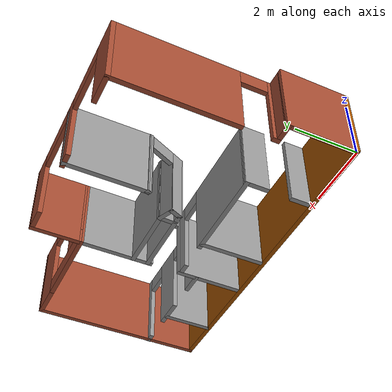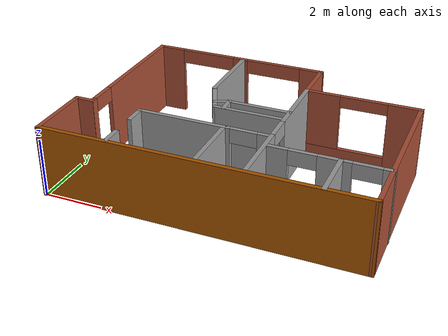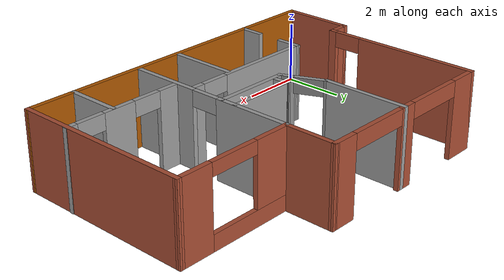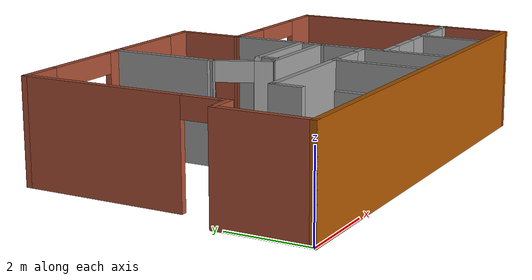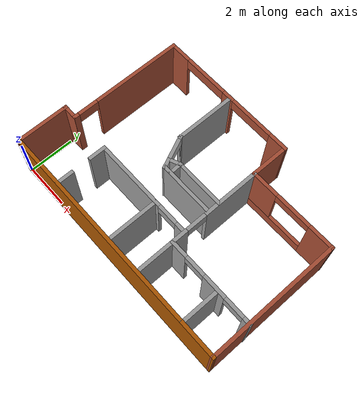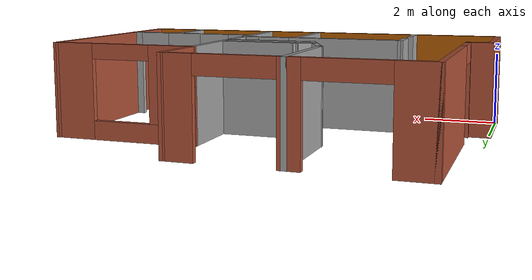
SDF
<?xml version='1.0'?>
<sdf version='1.6'>
  <model name='Apartment1'>
    <pose frame=''>5.35756 3.62505 0 0 -0 0</pose>
    <link name='Wall_26'>
      <collision name='Wall_26_Collision'>
        <geometry>
          <box>
            <size>10.85 0.15 2.5</size>
          </box>
        </geometry>
        <pose frame=''>0 0 1.25 0 -0 0</pose>
      </collision>
      <visual name='Wall_26_Visual'>
        <pose frame=''>0 0 1.25 0 -0 0</pose>
        <geometry>
          <box>
            <size>10.85 0.15 2.5</size>
          </box>
        </geometry>
        <material>
          <script>
            <uri>file://media/materials/scripts/gazebo.material</uri>
            <name>Gazebo/Grey</name>
          </script>
          <ambient>0.666667 0.333333 0 1</ambient>
        </material>
        <meta>
          <layer>0</layer>
        </meta>
      </visual>
      <pose frame=''>-0.007561 -3.62505 0 0 -0 0</pose>
    </link>
    <link name='Wall_29'>
      <collision name='Wall_29_Collision'>
        <geometry>
          <box>
            <size>5.823 0.15 2.5</size>
          </box>
        </geometry>
        <pose frame=''>0 0 1.25 0 -0 0</pose>
      </collision>
      <visual name='Wall_29_Visual'>
        <pose frame=''>0 0 1.25 0 -0 0</pose>
        <geometry>
          <box>
            <size>5.823 0.15 2.5</size>
          </box>
        </geometry>
        <material>
          <script>
            <uri>file://media/materials/scripts/gazebo.material</uri>
            <name>Gazebo/Bricks</name>
          </script>
          <ambient>1 1 1 1</ambient>
        </material>
        <meta>
          <layer>0</layer>
        </meta>
      </visual>
      <pose frame=''>5.33994 -0.788547 0 0 -0 1.57168</pose>
    </link>
    <link name='Wall_30'>
      <pose frame=''>3.41244 2.04145 0 0 0 -3.13822</pose>
      <visual name='Wall_30_Visual_0'>
        <pose frame=''>-1.42512 0 1.25 0 -0 0</pose>
        <geometry>
          <box>
            <size>1.14975 0.15 2.5</size>
          </box>
        </geometry>
        <material>
          <script>
            <uri>file://media/materials/scripts/gazebo.material</uri>
            <name>Gazebo/Bricks</name>
          </script>
          <ambient>1 1 1 1</ambient>
        </material>
        <meta>
          <layer>0</layer>
        </meta>
      </visual>
      <collision name='Wall_30_Collision_0'>
        <geometry>
          <box>
            <size>1.14975 0.15 2.5</size>
          </box>
        </geometry>
        <pose frame=''>-1.42512 0 1.25 0 -0 0</pose>
      </collision>
      <visual name='Wall_30_Visual_1'>
        <pose frame=''>0.574876 0 0.25 0 -0 0</pose>
        <geometry>
          <box>
            <size>2.85025 0.15 0.5</size>
          </box>
        </geometry>
        <material>
          <script>
            <uri>file://media/materials/scripts/gazebo.material</uri>
            <name>Gazebo/Bricks</name>
          </script>
          <ambient>1 1 1 1</ambient>
        </material>
        <meta>
          <layer>0</layer>
        </meta>
      </visual>
      <collision name='Wall_30_Collision_1'>
        <geometry>
          <box>
            <size>2.85025 0.15 0.5</size>
          </box>
        </geometry>
        <pose frame=''>0.574876 0 0.25 0 -0 0</pose>
      </collision>
      <visual name='Wall_30_Visual_2'>
        <pose frame=''>1.37488 0 1.5 0 -0 0</pose>
        <geometry>
          <box>
            <size>1.25025 0.15 2</size>
          </box>
        </geometry>
        <material>
          <script>
            <uri>file://media/materials/scripts/gazebo.material</uri>
            <name>Gazebo/Bricks</name>
          </script>
          <ambient>1 1 1 1</ambient>
        </material>
        <meta>
          <layer>0</layer>
        </meta>
      </visual>
      <collision name='Wall_30_Collision_2'>
        <geometry>
          <box>
            <size>1.25025 0.15 2</size>
          </box>
        </geometry>
        <pose frame=''>1.37488 0 1.5 0 -0 0</pose>
      </collision>
      <visual name='Wall_30_Visual_3'>
        <pose frame=''>-0.050248 0 2.3 0 -0 0</pose>
        <geometry>
          <box>
            <size>1.6 0.15 0.4</size>
          </box>
        </geometry>
        <material>
          <script>
            <uri>file://media/materials/scripts/gazebo.material</uri>
            <name>Gazebo/Bricks</name>
          </script>
          <ambient>1 1 1 1</ambient>
        </material>
        <meta>
          <layer>0</layer>
        </meta>
      </visual>
      <collision name='Wall_30_Collision_3'>
        <geometry>
          <box>
            <size>1.6 0.15 0.4</size>
          </box>
        </geometry>
        <pose frame=''>-0.050248 0 2.3 0 -0 0</pose>
      </collision>
    </link>
    <link name='Wall_32'>
      <pose frame=''>1.48994 -0.720047 0 0 0 -1.56989</pose>
      <visual name='Wall_32_Visual_0'>
        <pose frame=''>-1.57019 0 1.25 0 -0 0</pose>
        <geometry>
          <box>
            <size>2.51977 0.15 2.5</size>
          </box>
        </geometry>
        <material>
          <script>
            <uri>file://media/materials/scripts/gazebo.material</uri>
            <name>Gazebo/Grey</name>
          </script>
          <ambient>1 1 1 1</ambient>
        </material>
        <meta>
          <layer>0</layer>
        </meta>
      </visual>
      <collision name='Wall_32_Collision_0'>
        <geometry>
          <box>
            <size>2.51977 0.15 2.5</size>
          </box>
        </geometry>
        <pose frame=''>-1.57019 0 1.25 0 -0 0</pose>
      </collision>
      <visual name='Wall_32_Visual_1'>
        <pose frame=''>1.70989 0 1.25 0 -0 0</pose>
        <geometry>
          <box>
            <size>2.24038 0.15 2.5</size>
          </box>
        </geometry>
        <material>
          <script>
            <uri>file://media/materials/scripts/gazebo.material</uri>
            <name>Gazebo/Grey</name>
          </script>
          <ambient>1 1 1 1</ambient>
        </material>
        <meta>
          <layer>0</layer>
        </meta>
      </visual>
      <collision name='Wall_32_Collision_1'>
        <geometry>
          <box>
            <size>2.24038 0.15 2.5</size>
          </box>
        </geometry>
        <pose frame=''>1.70989 0 1.25 0 -0 0</pose>
      </collision>
      <visual name='Wall_32_Visual_2'>
        <pose frame=''>0.139696 0 2.25 0 -0 0</pose>
        <geometry>
          <box>
            <size>0.9 0.15 0.5</size>
          </box>
        </geometry>
        <material>
          <script>
            <uri>file://media/materials/scripts/gazebo.material</uri>
            <name>Gazebo/Grey</name>
          </script>
          <ambient>1 1 1 1</ambient>
        </material>
        <meta>
          <layer>0</layer>
        </meta>
      </visual>
      <collision name='Wall_32_Collision_2'>
        <geometry>
          <box>
            <size>0.9 0.15 0.5</size>
          </box>
        </geometry>
        <pose frame=''>0.139696 0 2.25 0 -0 0</pose>
      </collision>
    </link>
    <link name='Wall_34'>
      <pose frame=''>3.43256 -1.98283 0 0 -0 0</pose>
      <visual name='Wall_34_Visual_0'>
        <pose frame=''>-1.60757 0 1.25 0 -0 0</pose>
        <geometry>
          <box>
            <size>0.784866 0.15 2.5</size>
          </box>
        </geometry>
        <material>
          <script>
            <uri>file://media/materials/scripts/gazebo.material</uri>
            <name>Gazebo/Grey</name>
          </script>
          <ambient>1 1 1 1</ambient>
        </material>
        <meta>
          <layer>0</layer>
        </meta>
      </visual>
      <collision name='Wall_34_Collision_0'>
        <geometry>
          <box>
            <size>0.784866 0.15 2.5</size>
          </box>
        </geometry>
        <pose frame=''>-1.60757 0 1.25 0 -0 0</pose>
      </collision>
      <visual name='Wall_34_Visual_1'>
        <pose frame=''>0.208226 0 1.25 0 -0 0</pose>
        <geometry>
          <box>
            <size>1.04672 0.15 2.5</size>
          </box>
        </geometry>
        <material>
          <script>
            <uri>file://media/materials/scripts/gazebo.material</uri>
            <name>Gazebo/Grey</name>
          </script>
          <ambient>1 1 1 1</ambient>
        </material>
        <meta>
          <layer>0</layer>
        </meta>
      </visual>
      <collision name='Wall_34_Collision_1'>
        <geometry>
          <box>
            <size>1.04672 0.15 2.5</size>
          </box>
        </geometry>
        <pose frame=''>0.208226 0 1.25 0 -0 0</pose>
      </collision>
      <visual name='Wall_34_Visual_2'>
        <pose frame=''>1.81579 0 1.25 0 -0 0</pose>
        <geometry>
          <box>
            <size>0.368414 0.15 2.5</size>
          </box>
        </geometry>
        <material>
          <script>
            <uri>file://media/materials/scripts/gazebo.material</uri>
            <name>Gazebo/Grey</name>
          </script>
          <ambient>1 1 1 1</ambient>
        </material>
        <meta>
          <layer>0</layer>
        </meta>
      </visual>
      <collision name='Wall_34_Collision_2'>
        <geometry>
          <box>
            <size>0.368414 0.15 2.5</size>
          </box>
        </geometry>
        <pose frame=''>1.81579 0 1.25 0 -0 0</pose>
      </collision>
      <visual name='Wall_34_Visual_3'>
        <pose frame=''>-0.765134 0 2.25 0 -0 0</pose>
        <geometry>
          <box>
            <size>0.9 0.15 0.5</size>
          </box>
        </geometry>
        <material>
          <script>
            <uri>file://media/materials/scripts/gazebo.material</uri>
            <name>Gazebo/Grey</name>
          </script>
          <ambient>1 1 1 1</ambient>
        </material>
        <meta>
          <layer>0</layer>
        </meta>
      </visual>
      <collision name='Wall_34_Collision_3'>
        <geometry>
          <box>
            <size>0.9 0.15 0.5</size>
          </box>
        </geometry>
        <pose frame=''>-0.765134 0 2.25 0 -0 0</pose>
      </collision>
      <visual name='Wall_34_Visual_4'>
        <pose frame=''>1.18159 0 2.25 0 -0 0</pose>
        <geometry>
          <box>
            <size>0.9 0.15 0.5</size>
          </box>
        </geometry>
        <material>
          <script>
            <uri>file://media/materials/scripts/gazebo.material</uri>
            <name>Gazebo/Grey</name>
          </script>
          <ambient>1 1 1 1</ambient>
        </material>
        <meta>
          <layer>0</layer>
        </meta>
      </visual>
      <collision name='Wall_34_Collision_4'>
        <geometry>
          <box>
            <size>0.9 0.15 0.5</size>
          </box>
        </geometry>
        <pose frame=''>1.18159 0 2.25 0 -0 0</pose>
      </collision>
    </link>
    <link name='Wall_36'>
      <collision name='Wall_36_Collision'>
        <geometry>
          <box>
            <size>2.35 0.15 2.5</size>
          </box>
        </geometry>
        <pose frame=''>0 0 1.25 0 -0 0</pose>
      </collision>
      <visual name='Wall_36_Visual'>
        <pose frame=''>0 0 1.25 0 -0 0</pose>
        <geometry>
          <box>
            <size>2.35 0.15 2.5</size>
          </box>
        </geometry>
        <material>
          <script>
            <uri>file://media/materials/scripts/gazebo.material</uri>
            <name>Gazebo/Bricks</name>
          </script>
          <ambient>1 1 1 1</ambient>
        </material>
        <meta>
          <layer>0</layer>
        </meta>
      </visual>
      <pose frame=''>-5.35756 -2.52505 0 0 -0 1.5708</pose>
    </link>
    <link name='Wall_38'>
      <collision name='Wall_38_Collision'>
        <geometry>
          <box>
            <size>0.8 0.15 2.5</size>
          </box>
        </geometry>
        <pose frame=''>0 0 1.25 0 -0 0</pose>
      </collision>
      <visual name='Wall_38_Visual'>
        <pose frame=''>0 0 1.25 0 -0 0</pose>
        <geometry>
          <box>
            <size>0.8 0.15 2.5</size>
          </box>
        </geometry>
        <material>
          <script>
            <uri>file://media/materials/scripts/gazebo.material</uri>
            <name>Gazebo/Grey</name>
          </script>
          <ambient>1 1 1 1</ambient>
        </material>
        <meta>
          <layer>0</layer>
        </meta>
      </visual>
      <pose frame=''>-2.9976 -1.75005 0 0 0 -1.57073</pose>
    </link>
    <link name='Wall_40'>
      <pose frame=''>-0.822618 -1.42505 0 0 -0 0</pose>
      <visual name='Wall_40_Visual_0'>
        <pose frame=''>-0.642213 0 1.25 0 -0 0</pose>
        <geometry>
          <box>
            <size>3.21557 0.15 2.5</size>
          </box>
        </geometry>
        <material>
          <script>
            <uri>file://media/materials/scripts/gazebo.material</uri>
            <name>Gazebo/Grey</name>
          </script>
          <ambient>1 1 1 1</ambient>
        </material>
        <meta>
          <layer>0</layer>
        </meta>
      </visual>
      <collision name='Wall_40_Collision_0'>
        <geometry>
          <box>
            <size>3.21557 0.15 2.5</size>
          </box>
        </geometry>
        <pose frame=''>-0.642213 0 1.25 0 -0 0</pose>
      </collision>
      <visual name='Wall_40_Visual_1'>
        <pose frame=''>2.05779 0 1.25 0 -0 0</pose>
        <geometry>
          <box>
            <size>0.384425 0.15 2.5</size>
          </box>
        </geometry>
        <material>
          <script>
            <uri>file://media/materials/scripts/gazebo.material</uri>
            <name>Gazebo/Grey</name>
          </script>
          <ambient>1 1 1 1</ambient>
        </material>
        <meta>
          <layer>0</layer>
        </meta>
      </visual>
      <collision name='Wall_40_Collision_1'>
        <geometry>
          <box>
            <size>0.384425 0.15 2.5</size>
          </box>
        </geometry>
        <pose frame=''>2.05779 0 1.25 0 -0 0</pose>
      </collision>
      <visual name='Wall_40_Visual_2'>
        <pose frame=''>1.41558 0 2.25 0 -0 0</pose>
        <geometry>
          <box>
            <size>0.9 0.15 0.5</size>
          </box>
        </geometry>
        <material>
          <script>
            <uri>file://media/materials/scripts/gazebo.material</uri>
            <name>Gazebo/Grey</name>
          </script>
          <ambient>1 1 1 1</ambient>
        </material>
        <meta>
          <layer>0</layer>
        </meta>
      </visual>
      <collision name='Wall_40_Collision_2'>
        <geometry>
          <box>
            <size>0.9 0.15 0.5</size>
          </box>
        </geometry>
        <pose frame=''>1.41558 0 2.25 0 -0 0</pose>
      </collision>
    </link>
    <link name='Wall_42'>
      <collision name='Wall_42_Collision'>
        <geometry>
          <box>
            <size>0.725 0.15 2.5</size>
          </box>
        </geometry>
        <pose frame=''>0 0 1.25 0 -0 0</pose>
      </collision>
      <visual name='Wall_42_Visual'>
        <pose frame=''>0 0 1.25 0 -0 0</pose>
        <geometry>
          <box>
            <size>0.725 0.15 2.5</size>
          </box>
        </geometry>
        <material>
          <script>
            <uri>file://media/materials/scripts/gazebo.material</uri>
            <name>Gazebo/Bricks</name>
          </script>
          <ambient>1 1 1 1</ambient>
        </material>
        <meta>
          <layer>0</layer>
        </meta>
      </visual>
      <pose frame=''>-5.07006 -1.42505 0 0 -0 0</pose>
    </link>
    <link name='Wall_47'>
      <pose frame=''>-4.77856 1.09995 0 0 0 -1.5708</pose>
      <visual name='Wall_47_Visual_0'>
        <pose frame=''>-0.579939 0 1.25 0 -0 0</pose>
        <geometry>
          <box>
            <size>4.04012 0.15 2.5</size>
          </box>
        </geometry>
        <material>
          <script>
            <uri>file://media/materials/scripts/gazebo.material</uri>
            <name>Gazebo/Bricks</name>
          </script>
          <ambient>1 1 1 1</ambient>
        </material>
        <meta>
          <layer>0</layer>
        </meta>
      </visual>
      <collision name='Wall_47_Collision_0'>
        <geometry>
          <box>
            <size>4.04012 0.15 2.5</size>
          </box>
        </geometry>
        <pose frame=''>-0.579939 0 1.25 0 -0 0</pose>
      </collision>
      <visual name='Wall_47_Visual_1'>
        <pose frame=''>2.47006 0 1.25 0 -0 0</pose>
        <geometry>
          <box>
            <size>0.259878 0.15 2.5</size>
          </box>
        </geometry>
        <material>
          <script>
            <uri>file://media/materials/scripts/gazebo.material</uri>
            <name>Gazebo/Bricks</name>
          </script>
          <ambient>1 1 1 1</ambient>
        </material>
        <meta>
          <layer>0</layer>
        </meta>
      </visual>
      <collision name='Wall_47_Collision_1'>
        <geometry>
          <box>
            <size>0.259878 0.15 2.5</size>
          </box>
        </geometry>
        <pose frame=''>2.47006 0 1.25 0 -0 0</pose>
      </collision>
      <visual name='Wall_47_Visual_2'>
        <pose frame=''>1.89012 0 2.25 0 -0 0</pose>
        <geometry>
          <box>
            <size>0.9 0.15 0.5</size>
          </box>
        </geometry>
        <material>
          <script>
            <uri>file://media/materials/scripts/gazebo.material</uri>
            <name>Gazebo/Bricks</name>
          </script>
          <ambient>1 1 1 1</ambient>
        </material>
        <meta>
          <layer>0</layer>
        </meta>
      </visual>
      <collision name='Wall_47_Collision_2'>
        <geometry>
          <box>
            <size>0.9 0.15 0.5</size>
          </box>
        </geometry>
        <pose frame=''>1.89012 0 2.25 0 -0 0</pose>
      </collision>
    </link>
    <link name='Wall_49'>
      <pose frame=''>-1.64306 3.62495 0 0 -0 0</pose>
      <visual name='Wall_49_Visual_0'>
        <pose frame=''>-2.70516 0 1.25 0 -0 0</pose>
        <geometry>
          <box>
            <size>1.01067 0.15 2.5</size>
          </box>
        </geometry>
        <material>
          <script>
            <uri>file://media/materials/scripts/gazebo.material</uri>
            <name>Gazebo/Bricks</name>
          </script>
          <ambient>1 1 1 1</ambient>
        </material>
        <meta>
          <layer>0</layer>
        </meta>
      </visual>
      <collision name='Wall_49_Collision_0'>
        <geometry>
          <box>
            <size>1.01067 0.15 2.5</size>
          </box>
        </geometry>
        <pose frame=''>-2.70516 0 1.25 0 -0 0</pose>
      </collision>
      <visual name='Wall_49_Visual_1'>
        <pose frame=''>0.075185 0 1.25 0 -0 0</pose>
        <geometry>
          <box>
            <size>0.550019 0.15 2.5</size>
          </box>
        </geometry>
        <material>
          <script>
            <uri>file://media/materials/scripts/gazebo.material</uri>
            <name>Gazebo/Bricks</name>
          </script>
          <ambient>1 1 1 1</ambient>
        </material>
        <meta>
          <layer>0</layer>
        </meta>
      </visual>
      <collision name='Wall_49_Collision_1'>
        <geometry>
          <box>
            <size>0.550019 0.15 2.5</size>
          </box>
        </geometry>
        <pose frame=''>0.075185 0 1.25 0 -0 0</pose>
      </collision>
      <visual name='Wall_49_Visual_2'>
        <pose frame=''>2.78035 0 1.25 0 -0 0</pose>
        <geometry>
          <box>
            <size>0.860306 0.15 2.5</size>
          </box>
        </geometry>
        <material>
          <script>
            <uri>file://media/materials/scripts/gazebo.material</uri>
            <name>Gazebo/Bricks</name>
          </script>
          <ambient>1 1 1 1</ambient>
        </material>
        <meta>
          <layer>0</layer>
        </meta>
      </visual>
      <collision name='Wall_49_Collision_2'>
        <geometry>
          <box>
            <size>0.860306 0.15 2.5</size>
          </box>
        </geometry>
        <pose frame=''>2.78035 0 1.25 0 -0 0</pose>
      </collision>
      <visual name='Wall_49_Visual_3'>
        <pose frame=''>-1.19982 0 2.25 0 -0 0</pose>
        <geometry>
          <box>
            <size>2 0.15 0.5</size>
          </box>
        </geometry>
        <material>
          <script>
            <uri>file://media/materials/scripts/gazebo.material</uri>
            <name>Gazebo/Bricks</name>
          </script>
          <ambient>1 1 1 1</ambient>
        </material>
        <meta>
          <layer>0</layer>
        </meta>
      </visual>
      <collision name='Wall_49_Collision_3'>
        <geometry>
          <box>
            <size>2 0.15 0.5</size>
          </box>
        </geometry>
        <pose frame=''>-1.19982 0 2.25 0 -0 0</pose>
      </collision>
      <visual name='Wall_49_Visual_4'>
        <pose frame=''>1.35019 0 2.25 0 -0 0</pose>
        <geometry>
          <box>
            <size>2 0.15 0.5</size>
          </box>
        </geometry>
        <material>
          <script>
            <uri>file://media/materials/scripts/gazebo.material</uri>
            <name>Gazebo/Bricks</name>
          </script>
          <ambient>1 1 1 1</ambient>
        </material>
        <meta>
          <layer>0</layer>
        </meta>
      </visual>
      <collision name='Wall_49_Collision_4'>
        <geometry>
          <box>
            <size>2 0.15 0.5</size>
          </box>
        </geometry>
        <pose frame=''>1.35019 0 2.25 0 -0 0</pose>
      </collision>
    </link>
    <link name='Wall_50'>
      <collision name='Wall_50_Collision'>
        <geometry>
          <box>
            <size>1.73986 0.15 2.5</size>
          </box>
        </geometry>
        <pose frame=''>0 0 1.25 0 -0 0</pose>
      </collision>
      <visual name='Wall_50_Visual'>
        <pose frame=''>0 0 1.25 0 -0 0</pose>
        <geometry>
          <box>
            <size>1.73986 0.15 2.5</size>
          </box>
        </geometry>
        <material>
          <script>
            <uri>file://media/materials/scripts/gazebo.material</uri>
            <name>Gazebo/Bricks</name>
          </script>
          <ambient>1 1 1 1</ambient>
        </material>
        <meta>
          <layer>0</layer>
        </meta>
      </visual>
      <pose frame=''>1.48994 2.82995 0 0 0 -1.57394</pose>
    </link>
    <link name='Wall_52'>
      <collision name='Wall_52_Collision'>
        <geometry>
          <box>
            <size>2.5 0.15 2.5</size>
          </box>
        </geometry>
        <pose frame=''>0 0 1.25 0 -0 0</pose>
      </collision>
      <visual name='Wall_52_Visual'>
        <pose frame=''>0 0 1.25 0 -0 0</pose>
        <geometry>
          <box>
            <size>2.5 0.15 2.5</size>
          </box>
        </geometry>
        <material>
          <script>
            <uri>file://media/materials/scripts/gazebo.material</uri>
            <name>Gazebo/Grey</name>
          </script>
          <ambient>1 1 1 1</ambient>
        </material>
        <meta>
          <layer>0</layer>
        </meta>
      </visual>
      <pose frame=''>0.29975 -0.255007 0 0 -0 3.14159</pose>
    </link>
    <link name='Wall_53'>
      <pose frame=''>-1.17525 0.384973 0 0 -0 1.98625</pose>
      <visual name='Wall_53_Visual_0'>
        <pose frame=''>-0.534971 0 1.25 0 -0 0</pose>
        <geometry>
          <box>
            <size>0.479021 0.15 2.5</size>
          </box>
        </geometry>
        <material>
          <script>
            <uri>file://media/materials/scripts/gazebo.material</uri>
            <name>Gazebo/Grey</name>
          </script>
          <ambient>1 1 1 1</ambient>
        </material>
        <meta>
          <layer>0</layer>
        </meta>
      </visual>
      <collision name='Wall_53_Collision_0'>
        <geometry>
          <box>
            <size>0.479021 0.15 2.5</size>
          </box>
        </geometry>
        <pose frame=''>-0.534971 0 1.25 0 -0 0</pose>
      </collision>
      <visual name='Wall_53_Visual_1'>
        <pose frame=''>0.689511 0 1.25 0 -0 0</pose>
        <geometry>
          <box>
            <size>0.169941 0.15 2.5</size>
          </box>
        </geometry>
        <material>
          <script>
            <uri>file://media/materials/scripts/gazebo.material</uri>
            <name>Gazebo/Grey</name>
          </script>
          <ambient>1 1 1 1</ambient>
        </material>
        <meta>
          <layer>0</layer>
        </meta>
      </visual>
      <collision name='Wall_53_Collision_1'>
        <geometry>
          <box>
            <size>0.169941 0.15 2.5</size>
          </box>
        </geometry>
        <pose frame=''>0.689511 0 1.25 0 -0 0</pose>
      </collision>
      <visual name='Wall_53_Visual_2'>
        <pose frame=''>0.15454 0 2.25 0 -0 0</pose>
        <geometry>
          <box>
            <size>0.9 0.15 0.5</size>
          </box>
        </geometry>
        <material>
          <script>
            <uri>file://media/materials/scripts/gazebo.material</uri>
            <name>Gazebo/Grey</name>
          </script>
          <ambient>1 1 1 1</ambient>
        </material>
        <meta>
          <layer>0</layer>
        </meta>
      </visual>
      <collision name='Wall_53_Collision_2'>
        <geometry>
          <box>
            <size>0.9 0.15 0.5</size>
          </box>
        </geometry>
        <pose frame=''>0.15454 0 2.25 0 -0 0</pose>
      </collision>
    </link>
    <link name='Wall_54'>
      <collision name='Wall_54_Collision'>
        <geometry>
          <box>
            <size>2.75 0.15 2.5</size>
          </box>
        </geometry>
        <pose frame=''>0 0 1.25 0 -0 0</pose>
      </collision>
      <visual name='Wall_54_Visual'>
        <pose frame=''>0 0 1.25 0 -0 0</pose>
        <geometry>
          <box>
            <size>2.75 0.15 2.5</size>
          </box>
        </geometry>
        <material>
          <script>
            <uri>file://media/materials/scripts/gazebo.material</uri>
            <name>Gazebo/Grey</name>
          </script>
          <ambient>1 1 1 1</ambient>
        </material>
        <meta>
          <layer>0</layer>
        </meta>
      </visual>
      <pose frame=''>-1.45756 2.32495 0 0 -0 1.5708</pose>
    </link>
    <link name='Wall_57'>
      <collision name='Wall_57_Collision'>
        <geometry>
          <box>
            <size>0.604178 0.15 2.5</size>
          </box>
        </geometry>
        <pose frame=''>0 0 1.25 0 -0 0</pose>
      </collision>
      <visual name='Wall_57_Visual'>
        <pose frame=''>0 0 1.25 0 -0 0</pose>
        <geometry>
          <box>
            <size>0.604178 0.15 2.5</size>
          </box>
        </geometry>
        <material>
          <script>
            <uri>file://media/materials/scripts/gazebo.material</uri>
            <name>Gazebo/Grey</name>
          </script>
          <ambient>1 1 1 1</ambient>
        </material>
        <meta>
          <layer>0</layer>
        </meta>
      </visual>
      <pose frame=''>-0.806707 0.158078 0 0 -0 0.413554</pose>
    </link>
    <link name='Wall_58'>
      <collision name='Wall_58_Collision'>
        <geometry>
          <box>
            <size>0.647131 0.15 2.5</size>
          </box>
        </geometry>
        <pose frame=''>0 0 1.25 0 -0 0</pose>
      </collision>
      <visual name='Wall_58_Visual'>
        <pose frame=''>0 0 1.25 0 -0 0</pose>
        <geometry>
          <box>
            <size>0.647131 0.15 2.5</size>
          </box>
        </geometry>
        <material>
          <script>
            <uri>file://media/materials/scripts/gazebo.material</uri>
            <name>Gazebo/Grey</name>
          </script>
          <ambient>1 1 1 1</ambient>
        </material>
        <meta>
          <layer>0</layer>
        </meta>
      </visual>
      <pose frame=''>-0.587484 0.001028 0 0 0 -1.52541</pose>
    </link>
    <link name='Wall_60'>
      <collision name='Wall_60_Collision'>
        <geometry>
          <box>
            <size>2.228 0.15 2.5</size>
          </box>
        </geometry>
        <pose frame=''>0 0 1.25 0 -0 0</pose>
      </collision>
      <visual name='Wall_60_Visual'>
        <pose frame=''>0 0 1.25 0 -0 0</pose>
        <geometry>
          <box>
            <size>2.228 0.15 2.5</size>
          </box>
        </geometry>
        <material>
          <script>
            <uri>file://media/materials/scripts/gazebo.material</uri>
            <name>Gazebo/Grey</name>
          </script>
          <ambient>1 1 1 1</ambient>
        </material>
        <meta>
          <layer>0</layer>
        </meta>
      </visual>
      <pose frame=''>0.440238 0.249337 0 0 -0 0</pose>
    </link>
    <link name='Wall_63'>
      <collision name='Wall_63_Collision'>
        <geometry>
          <box>
            <size>1.75 0.15 2.5</size>
          </box>
        </geometry>
        <pose frame=''>0 0 1.25 0 -0 0</pose>
      </collision>
      <visual name='Wall_63_Visual'>
        <pose frame=''>0 0 1.25 0 -0 0</pose>
        <geometry>
          <box>
            <size>1.75 0.15 2.5</size>
          </box>
        </geometry>
        <material>
          <script>
            <uri>file://media/materials/scripts/gazebo.material</uri>
            <name>Gazebo/Grey</name>
          </script>
          <ambient>1 1 1 1</ambient>
        </material>
        <meta>
          <layer>0</layer>
        </meta>
      </visual>
      <pose frame=''>3.82303 -2.80936 0 0 0 -1.5708</pose>
    </link>
    <link name='Wall_65'>
      <collision name='Wall_65_Collision'>
        <geometry>
          <box>
            <size>2.209 0.15 2.5</size>
          </box>
        </geometry>
        <pose frame=''>0 0 1.25 0 -0 0</pose>
      </collision>
      <visual name='Wall_65_Visual'>
        <pose frame=''>0 0 1.25 0 -0 0</pose>
        <geometry>
          <box>
            <size>2.209 0.15 2.5</size>
          </box>
        </geometry>
        <material>
          <script>
            <uri>file://media/materials/scripts/gazebo.material</uri>
            <name>Gazebo/Grey</name>
          </script>
          <ambient>1 1 1 1</ambient>
        </material>
        <meta>
          <layer>0</layer>
        </meta>
      </visual>
      <pose frame=''>-0.063634 -2.47622 0 0 -0 1.5708</pose>
    </link>
    <link name='Wall_67'>
      <collision name='Wall_67_Collision'>
        <geometry>
          <box>
            <size>0.8 0.15 2.5</size>
          </box>
        </geometry>
        <pose frame=''>0 0 1.25 0 -0 0</pose>
      </collision>
      <visual name='Wall_67_Visual'>
        <pose frame=''>0 0 1.25 0 -0 0</pose>
        <geometry>
          <box>
            <size>0.8 0.15 2.5</size>
          </box>
        </geometry>
        <material>
          <script>
            <uri>file://media/materials/scripts/gazebo.material</uri>
            <name>Gazebo/Grey</name>
          </script>
          <ambient>1 1 1 1</ambient>
        </material>
        <meta>
          <layer>0</layer>
        </meta>
      </visual>
      <pose frame=''>-2.99756 -3.28933 0 0 0 -1.5708</pose>
    </link>
    <static>1</static>
  </model>
</sdf>
